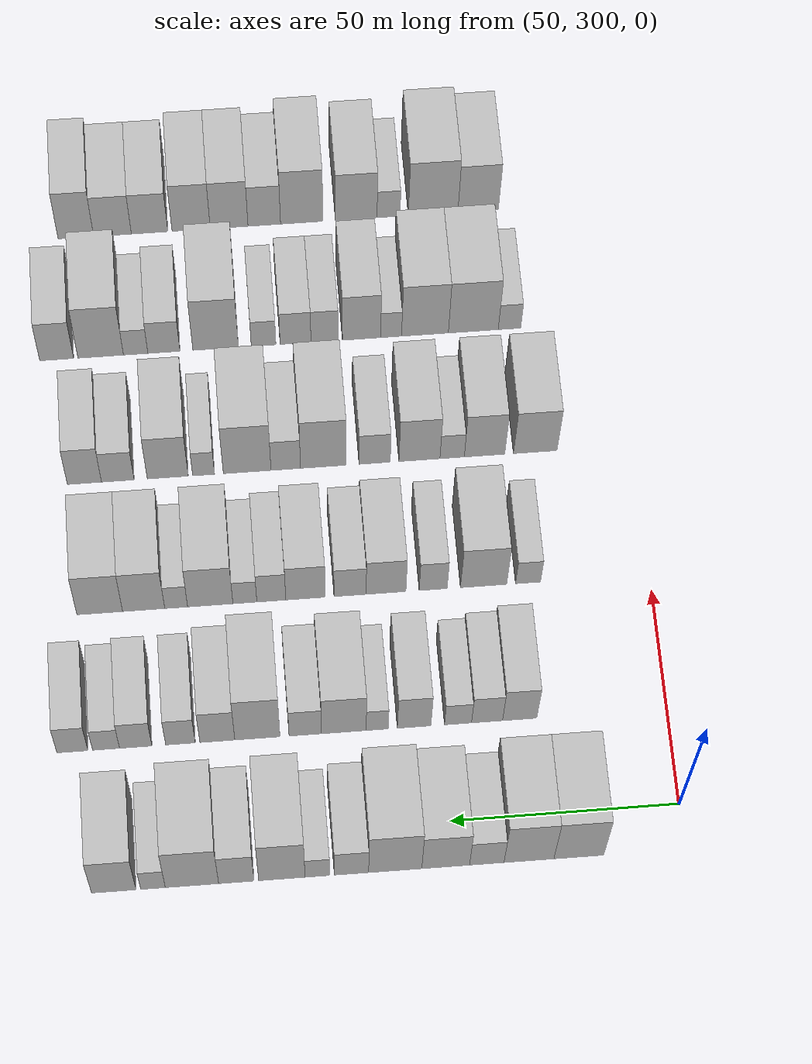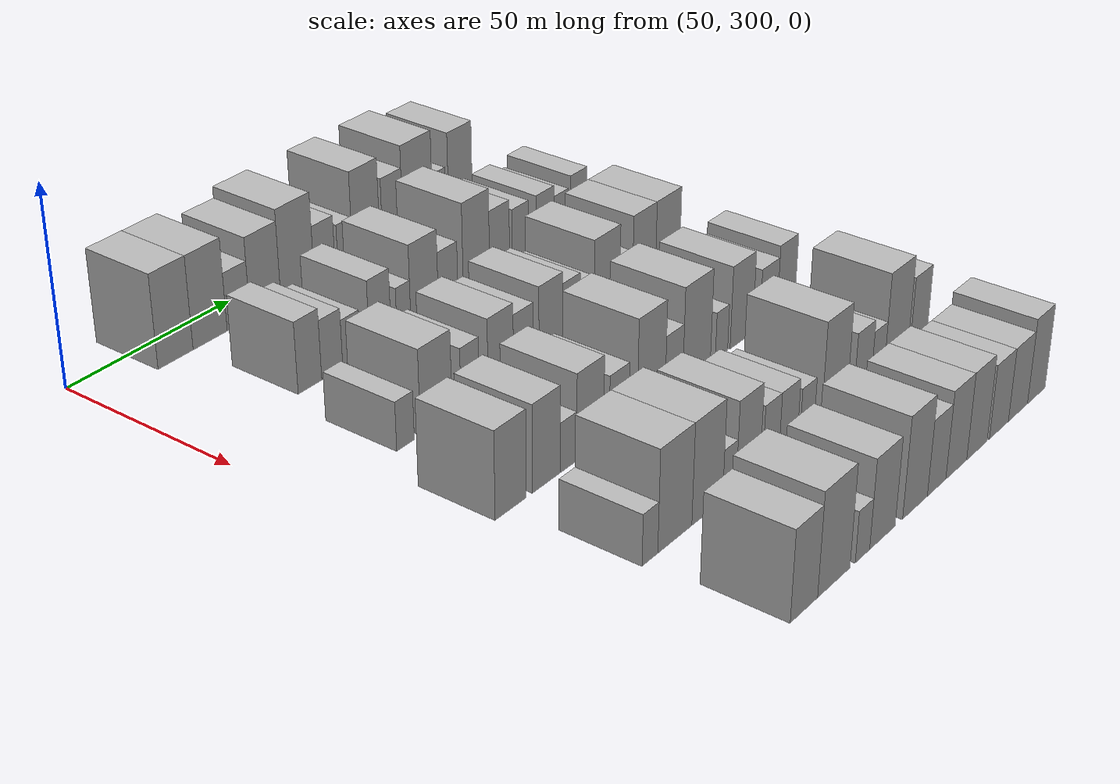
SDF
<sdf version="1.6">
 <world name="default">
  <model name="building_100">
   <static>1</static>
   <pose>50.0000 323.1327 0 0.000000 0.000000 0.000000</pose>
   <link name="link">
    <pose>0 0 12.00 0 0 0</pose>
    <collision name="collision"><geometry><box><size>20.0000 10.7579 24.0000</size></box></geometry></collision>
    <visual name="visual">
     <cast_shadows>0</cast_shadows>
     <geometry><box><size>20.0000 10.7579 24.0000</size></box></geometry>
     <material>
      <script>
       <uri>model://HANNAS_wall/materials/scripts</uri>
       <uri>model://HANNAS_wall/materials/textures</uri>
       <name>vrc/HANNAS_wall</name>
      </script>
     </material>
    </visual>
   </link>
  </model>
  <model name="building_101">
   <static>1</static>
   <pose>50.0000 333.9046 0 0.000000 0.000000 0.000000</pose>
   <link name="link">
    <pose>0 0 12.00 0 0 0</pose>
    <collision name="collision"><geometry><box><size>20.0000 10.7859 24.0000</size></box></geometry></collision>
    <visual name="visual">
     <cast_shadows>0</cast_shadows>
     <geometry><box><size>20.0000 10.7859 24.0000</size></box></geometry>
     <material>
      <script>
       <uri>model://HANNAS_wall/materials/scripts</uri>
       <uri>model://HANNAS_wall/materials/textures</uri>
       <name>vrc/HANNAS_wall</name>
      </script>
     </material>
    </visual>
   </link>
  </model>
  <model name="building_102">
   <static>1</static>
   <pose>50.0000 343.0157 0 0.000000 0.000000 0.000000</pose>
   <link name="link">
    <pose>0 0 7.50 0 0 0</pose>
    <collision name="collision"><geometry><box><size>20.0000 7.4364 15.0000</size></box></geometry></collision>
    <visual name="visual">
     <cast_shadows>0</cast_shadows>
     <geometry><box><size>20.0000 7.4364 15.0000</size></box></geometry>
     <material>
      <script>
       <uri>model://HANNAS_wall/materials/scripts</uri>
       <uri>model://HANNAS_wall/materials/textures</uri>
       <name>vrc/HANNAS_wall</name>
      </script>
     </material>
    </visual>
   </link>
  </model>
  <model name="building_103">
   <static>1</static>
   <pose>50.0000 351.8751 0 0.000000 0.000000 0.000000</pose>
   <link name="link">
    <pose>0 0 10.50 0 0 0</pose>
    <collision name="collision"><geometry><box><size>20.0000 10.2823 21.0000</size></box></geometry></collision>
    <visual name="visual">
     <cast_shadows>0</cast_shadows>
     <geometry><box><size>20.0000 10.2823 21.0000</size></box></geometry>
     <material>
      <script>
       <uri>model://HANNAS_wall/materials/scripts</uri>
       <uri>model://HANNAS_wall/materials/textures</uri>
       <name>vrc/HANNAS_wall</name>
      </script>
     </material>
    </visual>
   </link>
  </model>
  <model name="building_104">
   <static>1</static>
   <pose>50.0000 362.7400 0 0.000000 0.000000 0.000000</pose>
   <link name="link">
    <pose>0 0 12.00 0 0 0</pose>
    <collision name="collision"><geometry><box><size>20.0000 11.4475 24.0000</size></box></geometry></collision>
    <visual name="visual">
     <cast_shadows>0</cast_shadows>
     <geometry><box><size>20.0000 11.4475 24.0000</size></box></geometry>
     <material>
      <script>
       <uri>model://HANNAS_wall/materials/scripts</uri>
       <uri>model://HANNAS_wall/materials/textures</uri>
       <name>vrc/HANNAS_wall</name>
      </script>
     </material>
    </visual>
   </link>
  </model>
  <model name="building_105">
   <static>1</static>
   <pose>50.0000 372.1431 0 0.000000 0.000000 0.000000</pose>
   <link name="link">
    <pose>0 0 7.50 0 0 0</pose>
    <collision name="collision"><geometry><box><size>20.0000 7.3587 15.0000</size></box></geometry></collision>
    <visual name="visual">
     <cast_shadows>0</cast_shadows>
     <geometry><box><size>20.0000 7.3587 15.0000</size></box></geometry>
     <material>
      <script>
       <uri>model://HANNAS_wall/materials/scripts</uri>
       <uri>model://HANNAS_wall/materials/textures</uri>
       <name>vrc/HANNAS_wall</name>
      </script>
     </material>
    </visual>
   </link>
  </model>
  <model name="building_106">
   <static>1</static>
   <pose>50.0000 379.4725 0 0.000000 0.000000 0.000000</pose>
   <link name="link">
    <pose>0 0 6.00 0 0 0</pose>
    <collision name="collision"><geometry><box><size>20.0000 5.3002 12.0000</size></box></geometry></collision>
    <visual name="visual">
     <cast_shadows>0</cast_shadows>
     <geometry><box><size>20.0000 5.3002 12.0000</size></box></geometry>
     <material>
      <script>
       <uri>model://HANNAS_wall/materials/scripts</uri>
       <uri>model://HANNAS_wall/materials/textures</uri>
       <name>vrc/HANNAS_wall</name>
      </script>
     </material>
    </visual>
   </link>
  </model>
  <model name="building_107">
   <static>1</static>
   <pose>50.0000 387.0941 0 0.000000 0.000000 0.000000</pose>
   <link name="link">
    <pose>0 0 12.00 0 0 0</pose>
    <collision name="collision"><geometry><box><size>20.0000 9.9431 24.0000</size></box></geometry></collision>
    <visual name="visual">
     <cast_shadows>0</cast_shadows>
     <geometry><box><size>20.0000 9.9431 24.0000</size></box></geometry>
     <material>
      <script>
       <uri>model://HANNAS_wall/materials/scripts</uri>
       <uri>model://HANNAS_wall/materials/textures</uri>
       <name>vrc/HANNAS_wall</name>
      </script>
     </material>
    </visual>
   </link>
  </model>
  <model name="building_108">
   <static>1</static>
   <pose>50.0000 396.8652 0 0.000000 0.000000 0.000000</pose>
   <link name="link">
    <pose>0 0 9.00 0 0 0</pose>
    <collision name="collision"><geometry><box><size>20.0000 7.5990 18.0000</size></box></geometry></collision>
    <visual name="visual">
     <cast_shadows>0</cast_shadows>
     <geometry><box><size>20.0000 7.5990 18.0000</size></box></geometry>
     <material>
      <script>
       <uri>model://HANNAS_wall/materials/scripts</uri>
       <uri>model://HANNAS_wall/materials/textures</uri>
       <name>vrc/HANNAS_wall</name>
      </script>
     </material>
    </visual>
   </link>
  </model>
  <model name="building_109">
   <static>1</static>
   <pose>50.0000 406.3737 0 0.000000 0.000000 0.000000</pose>
   <link name="link">
    <pose>0 0 12.00 0 0 0</pose>
    <collision name="collision"><geometry><box><size>20.0000 11.4180 24.0000</size></box></geometry></collision>
    <visual name="visual">
     <cast_shadows>0</cast_shadows>
     <geometry><box><size>20.0000 11.4180 24.0000</size></box></geometry>
     <material>
      <script>
       <uri>model://HANNAS_wall/materials/scripts</uri>
       <uri>model://HANNAS_wall/materials/textures</uri>
       <name>vrc/HANNAS_wall</name>
      </script>
     </material>
    </visual>
   </link>
  </model>
  <model name="building_110">
   <static>1</static>
   <pose>50.0000 414.7088 0 0.000000 0.000000 0.000000</pose>
   <link name="link">
    <pose>0 0 6.00 0 0 0</pose>
    <collision name="collision"><geometry><box><size>20.0000 5.2522 12.0000</size></box></geometry></collision>
    <visual name="visual">
     <cast_shadows>0</cast_shadows>
     <geometry><box><size>20.0000 5.2522 12.0000</size></box></geometry>
     <material>
      <script>
       <uri>model://HANNAS_wall/materials/scripts</uri>
       <uri>model://HANNAS_wall/materials/textures</uri>
       <name>vrc/HANNAS_wall</name>
      </script>
     </material>
    </visual>
   </link>
  </model>
  <model name="building_111">
   <static>1</static>
   <pose>50.0000 423.0994 0 0.000000 0.000000 0.000000</pose>
   <link name="link">
    <pose>0 0 10.50 0 0 0</pose>
    <collision name="collision"><geometry><box><size>20.0000 9.5289 21.0000</size></box></geometry></collision>
    <visual name="visual">
     <cast_shadows>0</cast_shadows>
     <geometry><box><size>20.0000 9.5289 21.0000</size></box></geometry>
     <material>
      <script>
       <uri>model://HANNAS_wall/materials/scripts</uri>
       <uri>model://HANNAS_wall/materials/textures</uri>
       <name>vrc/HANNAS_wall</name>
      </script>
     </material>
    </visual>
   </link>
  </model>
  <model name="building_222">
   <static>1</static>
   <pose>82.0000 332.6432 0 0.000000 0.000000 0.000000</pose>
   <link name="link">
    <pose>0 0 9.00 0 0 0</pose>
    <collision name="collision"><geometry><box><size>20.0000 7.5420 18.0000</size></box></geometry></collision>
    <visual name="visual">
     <cast_shadows>0</cast_shadows>
     <geometry><box><size>20.0000 7.5420 18.0000</size></box></geometry>
     <material>
      <script>
       <uri>model://HANNAS_wall/materials/scripts</uri>
       <uri>model://HANNAS_wall/materials/textures</uri>
       <name>vrc/HANNAS_wall</name>
      </script>
     </material>
    </visual>
   </link>
  </model>
  <model name="building_223">
   <static>1</static>
   <pose>82.0000 339.8341 0 0.000000 0.000000 0.000000</pose>
   <link name="link">
    <pose>0 0 7.50 0 0 0</pose>
    <collision name="collision"><geometry><box><size>20.0000 6.8399 15.0000</size></box></geometry></collision>
    <visual name="visual">
     <cast_shadows>0</cast_shadows>
     <geometry><box><size>20.0000 6.8399 15.0000</size></box></geometry>
     <material>
      <script>
       <uri>model://HANNAS_wall/materials/scripts</uri>
       <uri>model://HANNAS_wall/materials/textures</uri>
       <name>vrc/HANNAS_wall</name>
      </script>
     </material>
    </visual>
   </link>
  </model>
  <model name="building_224">
   <static>1</static>
   <pose>82.0000 346.2307 0 0.000000 0.000000 0.000000</pose>
   <link name="link">
    <pose>0 0 6.00 0 0 0</pose>
    <collision name="collision"><geometry><box><size>20.0000 5.9531 12.0000</size></box></geometry></collision>
    <visual name="visual">
     <cast_shadows>0</cast_shadows>
     <geometry><box><size>20.0000 5.9531 12.0000</size></box></geometry>
     <material>
      <script>
       <uri>model://HANNAS_wall/materials/scripts</uri>
       <uri>model://HANNAS_wall/materials/textures</uri>
       <name>vrc/HANNAS_wall</name>
      </script>
     </material>
    </visual>
   </link>
  </model>
  <model name="building_225">
   <static>1</static>
   <pose>82.0000 355.9020 0 0.000000 0.000000 0.000000</pose>
   <link name="link">
    <pose>0 0 9.00 0 0 0</pose>
    <collision name="collision"><geometry><box><size>20.0000 7.3895 18.0000</size></box></geometry></collision>
    <visual name="visual">
     <cast_shadows>0</cast_shadows>
     <geometry><box><size>20.0000 7.3895 18.0000</size></box></geometry>
     <material>
      <script>
       <uri>model://HANNAS_wall/materials/scripts</uri>
       <uri>model://HANNAS_wall/materials/textures</uri>
       <name>vrc/HANNAS_wall</name>
      </script>
     </material>
    </visual>
   </link>
  </model>
  <model name="building_226">
   <static>1</static>
   <pose>82.0000 364.0254 0 0.000000 0.000000 0.000000</pose>
   <link name="link">
    <pose>0 0 6.00 0 0 0</pose>
    <collision name="collision"><geometry><box><size>20.0000 4.8573 12.0000</size></box></geometry></collision>
    <visual name="visual">
     <cast_shadows>0</cast_shadows>
     <geometry><box><size>20.0000 4.8573 12.0000</size></box></geometry>
     <material>
      <script>
       <uri>model://HANNAS_wall/materials/scripts</uri>
       <uri>model://HANNAS_wall/materials/textures</uri>
       <name>vrc/HANNAS_wall</name>
      </script>
     </material>
    </visual>
   </link>
  </model>
  <model name="building_227">
   <static>1</static>
   <pose>82.0000 371.3580 0 0.000000 0.000000 0.000000</pose>
   <link name="link">
    <pose>0 0 10.50 0 0 0</pose>
    <collision name="collision"><geometry><box><size>20.0000 9.8079 21.0000</size></box></geometry></collision>
    <visual name="visual">
     <cast_shadows>0</cast_shadows>
     <geometry><box><size>20.0000 9.8079 21.0000</size></box></geometry>
     <material>
      <script>
       <uri>model://HANNAS_wall/materials/scripts</uri>
       <uri>model://HANNAS_wall/materials/textures</uri>
       <name>vrc/HANNAS_wall</name>
      </script>
     </material>
    </visual>
   </link>
  </model>
  <model name="building_228">
   <static>1</static>
   <pose>82.0000 379.8227 0 0.000000 0.000000 0.000000</pose>
   <link name="link">
    <pose>0 0 7.50 0 0 0</pose>
    <collision name="collision"><geometry><box><size>20.0000 7.1215 15.0000</size></box></geometry></collision>
    <visual name="visual">
     <cast_shadows>0</cast_shadows>
     <geometry><box><size>20.0000 7.1215 15.0000</size></box></geometry>
     <material>
      <script>
       <uri>model://HANNAS_wall/materials/scripts</uri>
       <uri>model://HANNAS_wall/materials/textures</uri>
       <name>vrc/HANNAS_wall</name>
      </script>
     </material>
    </visual>
   </link>
  </model>
  <model name="building_229">
   <static>1</static>
   <pose>82.0000 390.3326 0 0.000000 0.000000 0.000000</pose>
   <link name="link">
    <pose>0 0 12.00 0 0 0</pose>
    <collision name="collision"><geometry><box><size>20.0000 9.8983 24.0000</size></box></geometry></collision>
    <visual name="visual">
     <cast_shadows>0</cast_shadows>
     <geometry><box><size>20.0000 9.8983 24.0000</size></box></geometry>
     <material>
      <script>
       <uri>model://HANNAS_wall/materials/scripts</uri>
       <uri>model://HANNAS_wall/materials/textures</uri>
       <name>vrc/HANNAS_wall</name>
      </script>
     </material>
    </visual>
   </link>
  </model>
  <model name="building_230">
   <static>1</static>
   <pose>82.0000 399.1062 0 0.000000 0.000000 0.000000</pose>
   <link name="link">
    <pose>0 0 9.00 0 0 0</pose>
    <collision name="collision"><geometry><box><size>20.0000 7.6490 18.0000</size></box></geometry></collision>
    <visual name="visual">
     <cast_shadows>0</cast_shadows>
     <geometry><box><size>20.0000 7.6490 18.0000</size></box></geometry>
     <material>
      <script>
       <uri>model://HANNAS_wall/materials/scripts</uri>
       <uri>model://HANNAS_wall/materials/textures</uri>
       <name>vrc/HANNAS_wall</name>
      </script>
     </material>
    </visual>
   </link>
  </model>
  <model name="building_231">
   <static>1</static>
   <pose>82.0000 407.1753 0 0.000000 0.000000 0.000000</pose>
   <link name="link">
    <pose>0 0 7.50 0 0 0</pose>
    <collision name="collision"><geometry><box><size>20.0000 6.4893 15.0000</size></box></geometry></collision>
    <visual name="visual">
     <cast_shadows>0</cast_shadows>
     <geometry><box><size>20.0000 6.4893 15.0000</size></box></geometry>
     <material>
      <script>
       <uri>model://HANNAS_wall/materials/scripts</uri>
       <uri>model://HANNAS_wall/materials/textures</uri>
       <name>vrc/HANNAS_wall</name>
      </script>
     </material>
    </visual>
   </link>
  </model>
  <model name="building_232">
   <static>1</static>
   <pose>82.0000 416.9723 0 0.000000 0.000000 0.000000</pose>
   <link name="link">
    <pose>0 0 7.50 0 0 0</pose>
    <collision name="collision"><geometry><box><size>20.0000 7.1047 15.0000</size></box></geometry></collision>
    <visual name="visual">
     <cast_shadows>0</cast_shadows>
     <geometry><box><size>20.0000 7.1047 15.0000</size></box></geometry>
     <material>
      <script>
       <uri>model://HANNAS_wall/materials/scripts</uri>
       <uri>model://HANNAS_wall/materials/textures</uri>
       <name>vrc/HANNAS_wall</name>
      </script>
     </material>
    </visual>
   </link>
  </model>
  <model name="building_233">
   <static>1</static>
   <pose>82.0000 423.4666 0 0.000000 0.000000 0.000000</pose>
   <link name="link">
    <pose>0 0 6.00 0 0 0</pose>
    <collision name="collision"><geometry><box><size>20.0000 5.8838 12.0000</size></box></geometry></collision>
    <visual name="visual">
     <cast_shadows>0</cast_shadows>
     <geometry><box><size>20.0000 5.8838 12.0000</size></box></geometry>
     <material>
      <script>
       <uri>model://HANNAS_wall/materials/scripts</uri>
       <uri>model://HANNAS_wall/materials/textures</uri>
       <name>vrc/HANNAS_wall</name>
      </script>
     </material>
    </visual>
   </link>
  </model>
  <model name="building_234">
   <static>1</static>
   <pose>82.0000 430.8089 0 0.000000 0.000000 0.000000</pose>
   <link name="link">
    <pose>0 0 7.50 0 0 0</pose>
    <collision name="collision"><geometry><box><size>20.0000 6.8008 15.0000</size></box></geometry></collision>
    <visual name="visual">
     <cast_shadows>0</cast_shadows>
     <geometry><box><size>20.0000 6.8008 15.0000</size></box></geometry>
     <material>
      <script>
       <uri>model://HANNAS_wall/materials/scripts</uri>
       <uri>model://HANNAS_wall/materials/textures</uri>
       <name>vrc/HANNAS_wall</name>
      </script>
     </material>
    </visual>
   </link>
  </model>
  <model name="building_345">
   <static>1</static>
   <pose>114.0000 327.4847 0 0.000000 0.000000 0.000000</pose>
   <link name="link">
    <pose>0 0 6.00 0 0 0</pose>
    <collision name="collision"><geometry><box><size>20.0000 5.6210 12.0000</size></box></geometry></collision>
    <visual name="visual">
     <cast_shadows>0</cast_shadows>
     <geometry><box><size>20.0000 5.6210 12.0000</size></box></geometry>
     <material>
      <script>
       <uri>model://HANNAS_wall/materials/scripts</uri>
       <uri>model://HANNAS_wall/materials/textures</uri>
       <name>vrc/HANNAS_wall</name>
      </script>
     </material>
    </visual>
   </link>
  </model>
  <model name="building_346">
   <static>1</static>
   <pose>114.0000 337.4984 0 0.000000 0.000000 0.000000</pose>
   <link name="link">
    <pose>0 0 10.50 0 0 0</pose>
    <collision name="collision"><geometry><box><size>20.0000 10.4064 21.0000</size></box></geometry></collision>
    <visual name="visual">
     <cast_shadows>0</cast_shadows>
     <geometry><box><size>20.0000 10.4064 21.0000</size></box></geometry>
     <material>
      <script>
       <uri>model://HANNAS_wall/materials/scripts</uri>
       <uri>model://HANNAS_wall/materials/textures</uri>
       <name>vrc/HANNAS_wall</name>
      </script>
     </material>
    </visual>
   </link>
  </model>
  <model name="building_347">
   <static>1</static>
   <pose>114.0000 348.8482 0 0.000000 0.000000 0.000000</pose>
   <link name="link">
    <pose>0 0 7.50 0 0 0</pose>
    <collision name="collision"><geometry><box><size>20.0000 6.2934 15.0000</size></box></geometry></collision>
    <visual name="visual">
     <cast_shadows>0</cast_shadows>
     <geometry><box><size>20.0000 6.2934 15.0000</size></box></geometry>
     <material>
      <script>
       <uri>model://HANNAS_wall/materials/scripts</uri>
       <uri>model://HANNAS_wall/materials/textures</uri>
       <name>vrc/HANNAS_wall</name>
      </script>
     </material>
    </visual>
   </link>
  </model>
  <model name="building_348">
   <static>1</static>
   <pose>114.0000 359.4627 0 0.000000 0.000000 0.000000</pose>
   <link name="link">
    <pose>0 0 9.00 0 0 0</pose>
    <collision name="collision"><geometry><box><size>20.0000 8.9355 18.0000</size></box></geometry></collision>
    <visual name="visual">
     <cast_shadows>0</cast_shadows>
     <geometry><box><size>20.0000 8.9355 18.0000</size></box></geometry>
     <material>
      <script>
       <uri>model://HANNAS_wall/materials/scripts</uri>
       <uri>model://HANNAS_wall/materials/textures</uri>
       <name>vrc/HANNAS_wall</name>
      </script>
     </material>
    </visual>
   </link>
  </model>
  <model name="building_349">
   <static>1</static>
   <pose>114.0000 367.5257 0 0.000000 0.000000 0.000000</pose>
   <link name="link">
    <pose>0 0 7.50 0 0 0</pose>
    <collision name="collision"><geometry><box><size>20.0000 7.1905 15.0000</size></box></geometry></collision>
    <visual name="visual">
     <cast_shadows>0</cast_shadows>
     <geometry><box><size>20.0000 7.1905 15.0000</size></box></geometry>
     <material>
      <script>
       <uri>model://HANNAS_wall/materials/scripts</uri>
       <uri>model://HANNAS_wall/materials/textures</uri>
       <name>vrc/HANNAS_wall</name>
      </script>
     </material>
    </visual>
   </link>
  </model>
  <model name="building_350">
   <static>1</static>
   <pose>114.0000 377.5331 0 0.000000 0.000000 0.000000</pose>
   <link name="link">
    <pose>0 0 9.00 0 0 0</pose>
    <collision name="collision"><geometry><box><size>20.0000 8.8243 18.0000</size></box></geometry></collision>
    <visual name="visual">
     <cast_shadows>0</cast_shadows>
     <geometry><box><size>20.0000 8.8243 18.0000</size></box></geometry>
     <material>
      <script>
       <uri>model://HANNAS_wall/materials/scripts</uri>
       <uri>model://HANNAS_wall/materials/textures</uri>
       <name>vrc/HANNAS_wall</name>
      </script>
     </material>
    </visual>
   </link>
  </model>
  <model name="building_351">
   <static>1</static>
   <pose>114.0000 385.1942 0 0.000000 0.000000 0.000000</pose>
   <link name="link">
    <pose>0 0 7.50 0 0 0</pose>
    <collision name="collision"><geometry><box><size>20.0000 6.4979 15.0000</size></box></geometry></collision>
    <visual name="visual">
     <cast_shadows>0</cast_shadows>
     <geometry><box><size>20.0000 6.4979 15.0000</size></box></geometry>
     <material>
      <script>
       <uri>model://HANNAS_wall/materials/scripts</uri>
       <uri>model://HANNAS_wall/materials/textures</uri>
       <name>vrc/HANNAS_wall</name>
      </script>
     </material>
    </visual>
   </link>
  </model>
  <model name="building_352">
   <static>1</static>
   <pose>114.0000 391.1268 0 0.000000 0.000000 0.000000</pose>
   <link name="link">
    <pose>0 0 6.00 0 0 0</pose>
    <collision name="collision"><geometry><box><size>20.0000 5.3672 12.0000</size></box></geometry></collision>
    <visual name="visual">
     <cast_shadows>0</cast_shadows>
     <geometry><box><size>20.0000 5.3672 12.0000</size></box></geometry>
     <material>
      <script>
       <uri>model://HANNAS_wall/materials/scripts</uri>
       <uri>model://HANNAS_wall/materials/textures</uri>
       <name>vrc/HANNAS_wall</name>
      </script>
     </material>
    </visual>
   </link>
  </model>
  <model name="building_353">
   <static>1</static>
   <pose>114.0000 398.8723 0 0.000000 0.000000 0.000000</pose>
   <link name="link">
    <pose>0 0 10.50 0 0 0</pose>
    <collision name="collision"><geometry><box><size>20.0000 10.1237 21.0000</size></box></geometry></collision>
    <visual name="visual">
     <cast_shadows>0</cast_shadows>
     <geometry><box><size>20.0000 10.1237 21.0000</size></box></geometry>
     <material>
      <script>
       <uri>model://HANNAS_wall/materials/scripts</uri>
       <uri>model://HANNAS_wall/materials/textures</uri>
       <name>vrc/HANNAS_wall</name>
      </script>
     </material>
    </visual>
   </link>
  </model>
  <model name="building_354">
   <static>1</static>
   <pose>114.0000 406.4977 0 0.000000 0.000000 0.000000</pose>
   <link name="link">
    <pose>0 0 6.00 0 0 0</pose>
    <collision name="collision"><geometry><box><size>20.0000 5.1271 12.0000</size></box></geometry></collision>
    <visual name="visual">
     <cast_shadows>0</cast_shadows>
     <geometry><box><size>20.0000 5.1271 12.0000</size></box></geometry>
     <material>
      <script>
       <uri>model://HANNAS_wall/materials/scripts</uri>
       <uri>model://HANNAS_wall/materials/textures</uri>
       <name>vrc/HANNAS_wall</name>
      </script>
     </material>
    </visual>
   </link>
  </model>
  <model name="building_355">
   <static>1</static>
   <pose>114.0000 413.7684 0 0.000000 0.000000 0.000000</pose>
   <link name="link">
    <pose>0 0 10.50 0 0 0</pose>
    <collision name="collision"><geometry><box><size>20.0000 9.4144 21.0000</size></box></geometry></collision>
    <visual name="visual">
     <cast_shadows>0</cast_shadows>
     <geometry><box><size>20.0000 9.4144 21.0000</size></box></geometry>
     <material>
      <script>
       <uri>model://HANNAS_wall/materials/scripts</uri>
       <uri>model://HANNAS_wall/materials/textures</uri>
       <name>vrc/HANNAS_wall</name>
      </script>
     </material>
    </visual>
   </link>
  </model>
  <model name="building_356">
   <static>1</static>
   <pose>114.0000 423.5754 0 0.000000 0.000000 0.000000</pose>
   <link name="link">
    <pose>0 0 10.50 0 0 0</pose>
    <collision name="collision"><geometry><box><size>20.0000 10.1996 21.0000</size></box></geometry></collision>
    <visual name="visual">
     <cast_shadows>0</cast_shadows>
     <geometry><box><size>20.0000 10.1996 21.0000</size></box></geometry>
     <material>
      <script>
       <uri>model://HANNAS_wall/materials/scripts</uri>
       <uri>model://HANNAS_wall/materials/textures</uri>
       <name>vrc/HANNAS_wall</name>
      </script>
     </material>
    </visual>
   </link>
  </model>
  <model name="building_463">
   <static>1</static>
   <pose>146.0000 322.5177 0 0.000000 0.000000 0.000000</pose>
   <link name="link">
    <pose>0 0 10.50 0 0 0</pose>
    <collision name="collision"><geometry><box><size>20.0000 10.0318 21.0000</size></box></geometry></collision>
    <visual name="visual">
     <cast_shadows>0</cast_shadows>
     <geometry><box><size>20.0000 10.0318 21.0000</size></box></geometry>
     <material>
      <script>
       <uri>model://HANNAS_wall/materials/scripts</uri>
       <uri>model://HANNAS_wall/materials/textures</uri>
       <name>vrc/HANNAS_wall</name>
      </script>
     </material>
    </visual>
   </link>
  </model>
  <model name="building_464">
   <static>1</static>
   <pose>146.0000 334.1823 0 0.000000 0.000000 0.000000</pose>
   <link name="link">
    <pose>0 0 10.50 0 0 0</pose>
    <collision name="collision"><geometry><box><size>20.0000 9.2972 21.0000</size></box></geometry></collision>
    <visual name="visual">
     <cast_shadows>0</cast_shadows>
     <geometry><box><size>20.0000 9.2972 21.0000</size></box></geometry>
     <material>
      <script>
       <uri>model://HANNAS_wall/materials/scripts</uri>
       <uri>model://HANNAS_wall/materials/textures</uri>
       <name>vrc/HANNAS_wall</name>
      </script>
     </material>
    </visual>
   </link>
  </model>
  <model name="building_465">
   <static>1</static>
   <pose>146.0000 341.6334 0 0.000000 0.000000 0.000000</pose>
   <link name="link">
    <pose>0 0 6.00 0 0 0</pose>
    <collision name="collision"><geometry><box><size>20.0000 5.6050 12.0000</size></box></geometry></collision>
    <visual name="visual">
     <cast_shadows>0</cast_shadows>
     <geometry><box><size>20.0000 5.6050 12.0000</size></box></geometry>
     <material>
      <script>
       <uri>model://HANNAS_wall/materials/scripts</uri>
       <uri>model://HANNAS_wall/materials/textures</uri>
       <name>vrc/HANNAS_wall</name>
      </script>
     </material>
    </visual>
   </link>
  </model>
  <model name="building_466">
   <static>1</static>
   <pose>146.0000 349.1468 0 0.000000 0.000000 0.000000</pose>
   <link name="link">
    <pose>0 0 10.50 0 0 0</pose>
    <collision name="collision"><geometry><box><size>20.0000 9.4218 21.0000</size></box></geometry></collision>
    <visual name="visual">
     <cast_shadows>0</cast_shadows>
     <geometry><box><size>20.0000 9.4218 21.0000</size></box></geometry>
     <material>
      <script>
       <uri>model://HANNAS_wall/materials/scripts</uri>
       <uri>model://HANNAS_wall/materials/textures</uri>
       <name>vrc/HANNAS_wall</name>
      </script>
     </material>
    </visual>
   </link>
  </model>
  <model name="building_467">
   <static>1</static>
   <pose>146.0000 359.4266 0 0.000000 0.000000 0.000000</pose>
   <link name="link">
    <pose>0 0 7.50 0 0 0</pose>
    <collision name="collision"><geometry><box><size>20.0000 7.1377 15.0000</size></box></geometry></collision>
    <visual name="visual">
     <cast_shadows>0</cast_shadows>
     <geometry><box><size>20.0000 7.1377 15.0000</size></box></geometry>
     <material>
      <script>
       <uri>model://HANNAS_wall/materials/scripts</uri>
       <uri>model://HANNAS_wall/materials/textures</uri>
       <name>vrc/HANNAS_wall</name>
      </script>
     </material>
    </visual>
   </link>
  </model>
  <model name="building_468">
   <static>1</static>
   <pose>146.0000 371.2073 0 0.000000 0.000000 0.000000</pose>
   <link name="link">
    <pose>0 0 12.00 0 0 0</pose>
    <collision name="collision"><geometry><box><size>20.0000 10.4236 24.0000</size></box></geometry></collision>
    <visual name="visual">
     <cast_shadows>0</cast_shadows>
     <geometry><box><size>20.0000 10.4236 24.0000</size></box></geometry>
     <material>
      <script>
       <uri>model://HANNAS_wall/materials/scripts</uri>
       <uri>model://HANNAS_wall/materials/textures</uri>
       <name>vrc/HANNAS_wall</name>
      </script>
     </material>
    </visual>
   </link>
  </model>
  <model name="building_469">
   <static>1</static>
   <pose>146.0000 379.8060 0 0.000000 0.000000 0.000000</pose>
   <link name="link">
    <pose>0 0 7.50 0 0 0</pose>
    <collision name="collision"><geometry><box><size>20.0000 6.7739 15.0000</size></box></geometry></collision>
    <visual name="visual">
     <cast_shadows>0</cast_shadows>
     <geometry><box><size>20.0000 6.7739 15.0000</size></box></geometry>
     <material>
      <script>
       <uri>model://HANNAS_wall/materials/scripts</uri>
       <uri>model://HANNAS_wall/materials/textures</uri>
       <name>vrc/HANNAS_wall</name>
      </script>
     </material>
    </visual>
   </link>
  </model>
  <model name="building_470">
   <static>1</static>
   <pose>146.0000 388.6441 0 0.000000 0.000000 0.000000</pose>
   <link name="link">
    <pose>0 0 12.00 0 0 0</pose>
    <collision name="collision"><geometry><box><size>20.0000 10.9022 24.0000</size></box></geometry></collision>
    <visual name="visual">
     <cast_shadows>0</cast_shadows>
     <geometry><box><size>20.0000 10.9022 24.0000</size></box></geometry>
     <material>
      <script>
       <uri>model://HANNAS_wall/materials/scripts</uri>
       <uri>model://HANNAS_wall/materials/textures</uri>
       <name>vrc/HANNAS_wall</name>
      </script>
     </material>
    </visual>
   </link>
  </model>
  <model name="building_471">
   <static>1</static>
   <pose>146.0000 398.5981 0 0.000000 0.000000 0.000000</pose>
   <link name="link">
    <pose>0 0 6.00 0 0 0</pose>
    <collision name="collision"><geometry><box><size>20.0000 5.0058 12.0000</size></box></geometry></collision>
    <visual name="visual">
     <cast_shadows>0</cast_shadows>
     <geometry><box><size>20.0000 5.0058 12.0000</size></box></geometry>
     <material>
      <script>
       <uri>model://HANNAS_wall/materials/scripts</uri>
       <uri>model://HANNAS_wall/materials/textures</uri>
       <name>vrc/HANNAS_wall</name>
      </script>
     </material>
    </visual>
   </link>
  </model>
  <model name="building_472">
   <static>1</static>
   <pose>146.0000 406.7835 0 0.000000 0.000000 0.000000</pose>
   <link name="link">
    <pose>0 0 10.50 0 0 0</pose>
    <collision name="collision"><geometry><box><size>20.0000 9.3649 21.0000</size></box></geometry></collision>
    <visual name="visual">
     <cast_shadows>0</cast_shadows>
     <geometry><box><size>20.0000 9.3649 21.0000</size></box></geometry>
     <material>
      <script>
       <uri>model://HANNAS_wall/materials/scripts</uri>
       <uri>model://HANNAS_wall/materials/textures</uri>
       <name>vrc/HANNAS_wall</name>
      </script>
     </material>
    </visual>
   </link>
  </model>
  <model name="building_473">
   <static>1</static>
   <pose>146.0000 418.1891 0 0.000000 0.000000 0.000000</pose>
   <link name="link">
    <pose>0 0 7.50 0 0 0</pose>
    <collision name="collision"><geometry><box><size>20.0000 7.4465 15.0000</size></box></geometry></collision>
    <visual name="visual">
     <cast_shadows>0</cast_shadows>
     <geometry><box><size>20.0000 7.4465 15.0000</size></box></geometry>
     <material>
      <script>
       <uri>model://HANNAS_wall/materials/scripts</uri>
       <uri>model://HANNAS_wall/materials/textures</uri>
       <name>vrc/HANNAS_wall</name>
      </script>
     </material>
    </visual>
   </link>
  </model>
  <model name="building_474">
   <static>1</static>
   <pose>146.0000 425.8055 0 0.000000 0.000000 0.000000</pose>
   <link name="link">
    <pose>0 0 9.00 0 0 0</pose>
    <collision name="collision"><geometry><box><size>20.0000 7.7863 18.0000</size></box></geometry></collision>
    <visual name="visual">
     <cast_shadows>0</cast_shadows>
     <geometry><box><size>20.0000 7.7863 18.0000</size></box></geometry>
     <material>
      <script>
       <uri>model://HANNAS_wall/materials/scripts</uri>
       <uri>model://HANNAS_wall/materials/textures</uri>
       <name>vrc/HANNAS_wall</name>
      </script>
     </material>
    </visual>
   </link>
  </model>
  <model name="building_583">
   <static>1</static>
   <pose>178.0000 325.2216 0 0.000000 0.000000 0.000000</pose>
   <link name="link">
    <pose>0 0 6.00 0 0 0</pose>
    <collision name="collision"><geometry><box><size>20.0000 5.2621 12.0000</size></box></geometry></collision>
    <visual name="visual">
     <cast_shadows>0</cast_shadows>
     <geometry><box><size>20.0000 5.2621 12.0000</size></box></geometry>
     <material>
      <script>
       <uri>model://HANNAS_wall/materials/scripts</uri>
       <uri>model://HANNAS_wall/materials/textures</uri>
       <name>vrc/HANNAS_wall</name>
      </script>
     </material>
    </visual>
   </link>
  </model>
  <model name="building_584">
   <static>1</static>
   <pose>178.0000 333.7078 0 0.000000 0.000000 0.000000</pose>
   <link name="link">
    <pose>0 0 12.00 0 0 0</pose>
    <collision name="collision"><geometry><box><size>20.0000 11.7103 24.0000</size></box></geometry></collision>
    <visual name="visual">
     <cast_shadows>0</cast_shadows>
     <geometry><box><size>20.0000 11.7103 24.0000</size></box></geometry>
     <material>
      <script>
       <uri>model://HANNAS_wall/materials/scripts</uri>
       <uri>model://HANNAS_wall/materials/textures</uri>
       <name>vrc/HANNAS_wall</name>
      </script>
     </material>
    </visual>
   </link>
  </model>
  <model name="building_585">
   <static>1</static>
   <pose>178.0000 345.0579 0 0.000000 0.000000 0.000000</pose>
   <link name="link">
    <pose>0 0 12.00 0 0 0</pose>
    <collision name="collision"><geometry><box><size>20.0000 10.9900 24.0000</size></box></geometry></collision>
    <visual name="visual">
     <cast_shadows>0</cast_shadows>
     <geometry><box><size>20.0000 10.9900 24.0000</size></box></geometry>
     <material>
      <script>
       <uri>model://HANNAS_wall/materials/scripts</uri>
       <uri>model://HANNAS_wall/materials/textures</uri>
       <name>vrc/HANNAS_wall</name>
      </script>
     </material>
    </visual>
   </link>
  </model>
  <model name="building_586">
   <static>1</static>
   <pose>178.0000 353.0120 0 0.000000 0.000000 0.000000</pose>
   <link name="link">
    <pose>0 0 6.00 0 0 0</pose>
    <collision name="collision"><geometry><box><size>20.0000 4.9183 12.0000</size></box></geometry></collision>
    <visual name="visual">
     <cast_shadows>0</cast_shadows>
     <geometry><box><size>20.0000 4.9183 12.0000</size></box></geometry>
     <material>
      <script>
       <uri>model://HANNAS_wall/materials/scripts</uri>
       <uri>model://HANNAS_wall/materials/textures</uri>
       <name>vrc/HANNAS_wall</name>
      </script>
     </material>
    </visual>
   </link>
  </model>
  <model name="building_587">
   <static>1</static>
   <pose>178.0000 359.9328 0 0.000000 0.000000 0.000000</pose>
   <link name="link">
    <pose>0 0 10.50 0 0 0</pose>
    <collision name="collision"><geometry><box><size>20.0000 8.9233 21.0000</size></box></geometry></collision>
    <visual name="visual">
     <cast_shadows>0</cast_shadows>
     <geometry><box><size>20.0000 8.9233 21.0000</size></box></geometry>
     <material>
      <script>
       <uri>model://HANNAS_wall/materials/scripts</uri>
       <uri>model://HANNAS_wall/materials/textures</uri>
       <name>vrc/HANNAS_wall</name>
      </script>
     </material>
    </visual>
   </link>
  </model>
  <model name="building_588">
   <static>1</static>
   <pose>178.0000 368.5782 0 0.000000 0.000000 0.000000</pose>
   <link name="link">
    <pose>0 0 7.50 0 0 0</pose>
    <collision name="collision"><geometry><box><size>20.0000 6.3675 15.0000</size></box></geometry></collision>
    <visual name="visual">
     <cast_shadows>0</cast_shadows>
     <geometry><box><size>20.0000 6.3675 15.0000</size></box></geometry>
     <material>
      <script>
       <uri>model://HANNAS_wall/materials/scripts</uri>
       <uri>model://HANNAS_wall/materials/textures</uri>
       <name>vrc/HANNAS_wall</name>
      </script>
     </material>
    </visual>
   </link>
  </model>
  <model name="building_589">
   <static>1</static>
   <pose>178.0000 375.3610 0 0.000000 0.000000 0.000000</pose>
   <link name="link">
    <pose>0 0 7.50 0 0 0</pose>
    <collision name="collision"><geometry><box><size>20.0000 7.1980 15.0000</size></box></geometry></collision>
    <visual name="visual">
     <cast_shadows>0</cast_shadows>
     <geometry><box><size>20.0000 7.1980 15.0000</size></box></geometry>
     <material>
      <script>
       <uri>model://HANNAS_wall/materials/scripts</uri>
       <uri>model://HANNAS_wall/materials/textures</uri>
       <name>vrc/HANNAS_wall</name>
      </script>
     </material>
    </visual>
   </link>
  </model>
  <model name="building_590">
   <static>1</static>
   <pose>178.0000 382.8349 0 0.000000 0.000000 0.000000</pose>
   <link name="link">
    <pose>0 0 6.00 0 0 0</pose>
    <collision name="collision"><geometry><box><size>20.0000 5.7499 12.0000</size></box></geometry></collision>
    <visual name="visual">
     <cast_shadows>0</cast_shadows>
     <geometry><box><size>20.0000 5.7499 12.0000</size></box></geometry>
     <material>
      <script>
       <uri>model://HANNAS_wall/materials/scripts</uri>
       <uri>model://HANNAS_wall/materials/textures</uri>
       <name>vrc/HANNAS_wall</name>
      </script>
     </material>
    </visual>
   </link>
  </model>
  <model name="building_591">
   <static>1</static>
   <pose>178.0000 394.0282 0 0.000000 0.000000 0.000000</pose>
   <link name="link">
    <pose>0 0 12.00 0 0 0</pose>
    <collision name="collision"><geometry><box><size>20.0000 10.6366 24.0000</size></box></geometry></collision>
    <visual name="visual">
     <cast_shadows>0</cast_shadows>
     <geometry><box><size>20.0000 10.6366 24.0000</size></box></geometry>
     <material>
      <script>
       <uri>model://HANNAS_wall/materials/scripts</uri>
       <uri>model://HANNAS_wall/materials/textures</uri>
       <name>vrc/HANNAS_wall</name>
      </script>
     </material>
    </visual>
   </link>
  </model>
  <model name="building_592">
   <static>1</static>
   <pose>178.0000 406.0936 0 0.000000 0.000000 0.000000</pose>
   <link name="link">
    <pose>0 0 7.50 0 0 0</pose>
    <collision name="collision"><geometry><box><size>20.0000 7.4942 15.0000</size></box></geometry></collision>
    <visual name="visual">
     <cast_shadows>0</cast_shadows>
     <geometry><box><size>20.0000 7.4942 15.0000</size></box></geometry>
     <material>
      <script>
       <uri>model://HANNAS_wall/materials/scripts</uri>
       <uri>model://HANNAS_wall/materials/textures</uri>
       <name>vrc/HANNAS_wall</name>
      </script>
     </material>
    </visual>
   </link>
  </model>
  <model name="building_593">
   <static>1</static>
   <pose>178.0000 412.6867 0 0.000000 0.000000 0.000000</pose>
   <link name="link">
    <pose>0 0 6.00 0 0 0</pose>
    <collision name="collision"><geometry><box><size>20.0000 5.6920 12.0000</size></box></geometry></collision>
    <visual name="visual">
     <cast_shadows>0</cast_shadows>
     <geometry><box><size>20.0000 5.6920 12.0000</size></box></geometry>
     <material>
      <script>
       <uri>model://HANNAS_wall/materials/scripts</uri>
       <uri>model://HANNAS_wall/materials/textures</uri>
       <name>vrc/HANNAS_wall</name>
      </script>
     </material>
    </visual>
   </link>
  </model>
  <model name="building_594">
   <static>1</static>
   <pose>178.0000 420.8296 0 0.000000 0.000000 0.000000</pose>
   <link name="link">
    <pose>0 0 12.00 0 0 0</pose>
    <collision name="collision"><geometry><box><size>20.0000 10.5939 24.0000</size></box></geometry></collision>
    <visual name="visual">
     <cast_shadows>0</cast_shadows>
     <geometry><box><size>20.0000 10.5939 24.0000</size></box></geometry>
     <material>
      <script>
       <uri>model://HANNAS_wall/materials/scripts</uri>
       <uri>model://HANNAS_wall/materials/textures</uri>
       <name>vrc/HANNAS_wall</name>
      </script>
     </material>
    </visual>
   </link>
  </model>
  <model name="building_595">
   <static>1</static>
   <pose>178.0000 431.0731 0 0.000000 0.000000 0.000000</pose>
   <link name="link">
    <pose>0 0 9.00 0 0 0</pose>
    <collision name="collision"><geometry><box><size>20.0000 7.8931 18.0000</size></box></geometry></collision>
    <visual name="visual">
     <cast_shadows>0</cast_shadows>
     <geometry><box><size>20.0000 7.8931 18.0000</size></box></geometry>
     <material>
      <script>
       <uri>model://HANNAS_wall/materials/scripts</uri>
       <uri>model://HANNAS_wall/materials/textures</uri>
       <name>vrc/HANNAS_wall</name>
      </script>
     </material>
    </visual>
   </link>
  </model>
  <model name="building_708">
   <static>1</static>
   <pose>210.0000 329.5064 0 0.000000 0.000000 0.000000</pose>
   <link name="link">
    <pose>0 0 10.50 0 0 0</pose>
    <collision name="collision"><geometry><box><size>20.0000 9.6905 21.0000</size></box></geometry></collision>
    <visual name="visual">
     <cast_shadows>0</cast_shadows>
     <geometry><box><size>20.0000 9.6905 21.0000</size></box></geometry>
     <material>
      <script>
       <uri>model://HANNAS_wall/materials/scripts</uri>
       <uri>model://HANNAS_wall/materials/textures</uri>
       <name>vrc/HANNAS_wall</name>
      </script>
     </material>
    </visual>
   </link>
  </model>
  <model name="building_709">
   <static>1</static>
   <pose>210.0000 340.2852 0 0.000000 0.000000 0.000000</pose>
   <link name="link">
    <pose>0 0 12.00 0 0 0</pose>
    <collision name="collision"><geometry><box><size>20.0000 11.8670 24.0000</size></box></geometry></collision>
    <visual name="visual">
     <cast_shadows>0</cast_shadows>
     <geometry><box><size>20.0000 11.8670 24.0000</size></box></geometry>
     <material>
      <script>
       <uri>model://HANNAS_wall/materials/scripts</uri>
       <uri>model://HANNAS_wall/materials/textures</uri>
       <name>vrc/HANNAS_wall</name>
      </script>
     </material>
    </visual>
   </link>
  </model>
  <model name="building_710">
   <static>1</static>
   <pose>210.0000 350.9678 0 0.000000 0.000000 0.000000</pose>
   <link name="link">
    <pose>0 0 6.00 0 0 0</pose>
    <collision name="collision"><geometry><box><size>20.0000 5.4983 12.0000</size></box></geometry></collision>
    <visual name="visual">
     <cast_shadows>0</cast_shadows>
     <geometry><box><size>20.0000 5.4983 12.0000</size></box></geometry>
     <material>
      <script>
       <uri>model://HANNAS_wall/materials/scripts</uri>
       <uri>model://HANNAS_wall/materials/textures</uri>
       <name>vrc/HANNAS_wall</name>
      </script>
     </material>
    </visual>
   </link>
  </model>
  <model name="building_711">
   <static>1</static>
   <pose>210.0000 358.6848 0 0.000000 0.000000 0.000000</pose>
   <link name="link">
    <pose>0 0 10.50 0 0 0</pose>
    <collision name="collision"><geometry><box><size>20.0000 9.9355 21.0000</size></box></geometry></collision>
    <visual name="visual">
     <cast_shadows>0</cast_shadows>
     <geometry><box><size>20.0000 9.9355 21.0000</size></box></geometry>
     <material>
      <script>
       <uri>model://HANNAS_wall/materials/scripts</uri>
       <uri>model://HANNAS_wall/materials/textures</uri>
       <name>vrc/HANNAS_wall</name>
      </script>
     </material>
    </visual>
   </link>
  </model>
  <model name="building_712">
   <static>1</static>
   <pose>210.0000 371.6972 0 0.000000 0.000000 0.000000</pose>
   <link name="link">
    <pose>0 0 12.00 0 0 0</pose>
    <collision name="collision"><geometry><box><size>20.0000 10.0894 24.0000</size></box></geometry></collision>
    <visual name="visual">
     <cast_shadows>0</cast_shadows>
     <geometry><box><size>20.0000 10.0894 24.0000</size></box></geometry>
     <material>
      <script>
       <uri>model://HANNAS_wall/materials/scripts</uri>
       <uri>model://HANNAS_wall/materials/textures</uri>
       <name>vrc/HANNAS_wall</name>
      </script>
     </material>
    </visual>
   </link>
  </model>
  <model name="building_713">
   <static>1</static>
   <pose>210.0000 380.6237 0 0.000000 0.000000 0.000000</pose>
   <link name="link">
    <pose>0 0 9.00 0 0 0</pose>
    <collision name="collision"><geometry><box><size>20.0000 7.7636 18.0000</size></box></geometry></collision>
    <visual name="visual">
     <cast_shadows>0</cast_shadows>
     <geometry><box><size>20.0000 7.7636 18.0000</size></box></geometry>
     <material>
      <script>
       <uri>model://HANNAS_wall/materials/scripts</uri>
       <uri>model://HANNAS_wall/materials/textures</uri>
       <name>vrc/HANNAS_wall</name>
      </script>
     </material>
    </visual>
   </link>
  </model>
  <model name="building_714">
   <static>1</static>
   <pose>210.0000 389.0045 0 0.000000 0.000000 0.000000</pose>
   <link name="link">
    <pose>0 0 10.50 0 0 0</pose>
    <collision name="collision"><geometry><box><size>20.0000 8.9980 21.0000</size></box></geometry></collision>
    <visual name="visual">
     <cast_shadows>0</cast_shadows>
     <geometry><box><size>20.0000 8.9980 21.0000</size></box></geometry>
     <material>
      <script>
       <uri>model://HANNAS_wall/materials/scripts</uri>
       <uri>model://HANNAS_wall/materials/textures</uri>
       <name>vrc/HANNAS_wall</name>
      </script>
     </material>
    </visual>
   </link>
  </model>
  <model name="building_715">
   <static>1</static>
   <pose>210.0000 398.0448 0 0.000000 0.000000 0.000000</pose>
   <link name="link">
    <pose>0 0 10.50 0 0 0</pose>
    <collision name="collision"><geometry><box><size>20.0000 9.0828 21.0000</size></box></geometry></collision>
    <visual name="visual">
     <cast_shadows>0</cast_shadows>
     <geometry><box><size>20.0000 9.0828 21.0000</size></box></geometry>
     <material>
      <script>
       <uri>model://HANNAS_wall/materials/scripts</uri>
       <uri>model://HANNAS_wall/materials/textures</uri>
       <name>vrc/HANNAS_wall</name>
      </script>
     </material>
    </visual>
   </link>
  </model>
  <model name="building_716">
   <static>1</static>
   <pose>210.0000 407.9283 0 0.000000 0.000000 0.000000</pose>
   <link name="link">
    <pose>0 0 9.00 0 0 0</pose>
    <collision name="collision"><geometry><box><size>20.0000 8.6841 18.0000</size></box></geometry></collision>
    <visual name="visual">
     <cast_shadows>0</cast_shadows>
     <geometry><box><size>20.0000 8.6841 18.0000</size></box></geometry>
     <material>
      <script>
       <uri>model://HANNAS_wall/materials/scripts</uri>
       <uri>model://HANNAS_wall/materials/textures</uri>
       <name>vrc/HANNAS_wall</name>
      </script>
     </material>
    </visual>
   </link>
  </model>
  <model name="building_717">
   <static>1</static>
   <pose>210.0000 416.7580 0 0.000000 0.000000 0.000000</pose>
   <link name="link">
    <pose>0 0 9.00 0 0 0</pose>
    <collision name="collision"><geometry><box><size>20.0000 8.9754 18.0000</size></box></geometry></collision>
    <visual name="visual">
     <cast_shadows>0</cast_shadows>
     <geometry><box><size>20.0000 8.9754 18.0000</size></box></geometry>
     <material>
      <script>
       <uri>model://HANNAS_wall/materials/scripts</uri>
       <uri>model://HANNAS_wall/materials/textures</uri>
       <name>vrc/HANNAS_wall</name>
      </script>
     </material>
    </visual>
   </link>
  </model>
  <model name="building_718">
   <static>1</static>
   <pose>210.0000 425.4626 0 0.000000 0.000000 0.000000</pose>
   <link name="link">
    <pose>0 0 10.50 0 0 0</pose>
    <collision name="collision"><geometry><box><size>20.0000 8.4338 21.0000</size></box></geometry></collision>
    <visual name="visual">
     <cast_shadows>0</cast_shadows>
     <geometry><box><size>20.0000 8.4338 21.0000</size></box></geometry>
     <material>
      <script>
       <uri>model://HANNAS_wall/materials/scripts</uri>
       <uri>model://HANNAS_wall/materials/textures</uri>
       <name>vrc/HANNAS_wall</name>
      </script>
     </material>
    </visual>
   </link>
  </model>
 </world>
</sdf>
